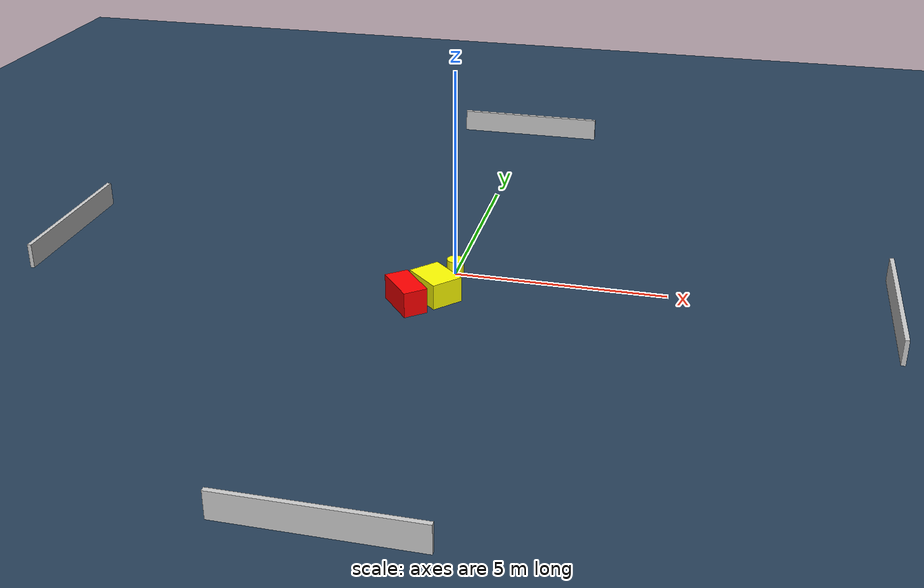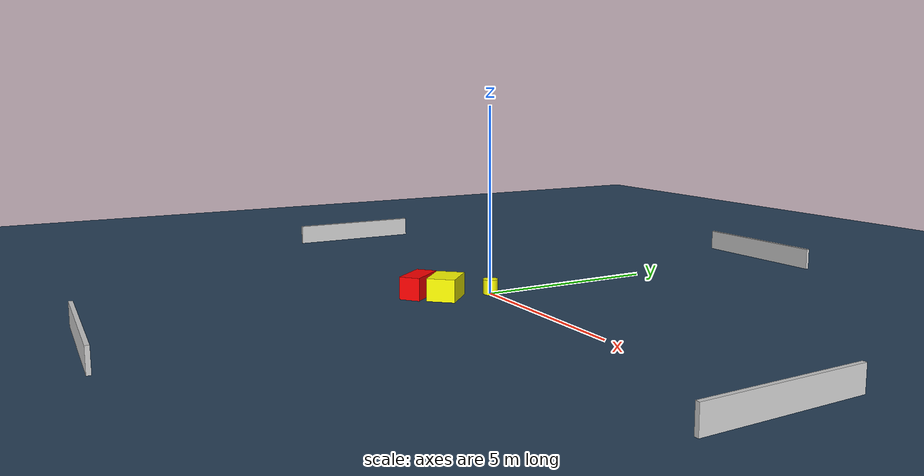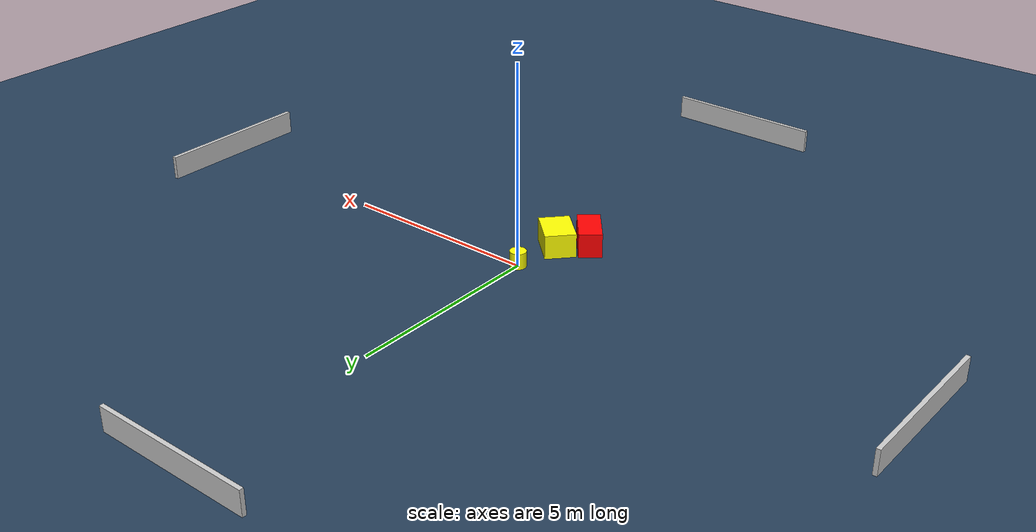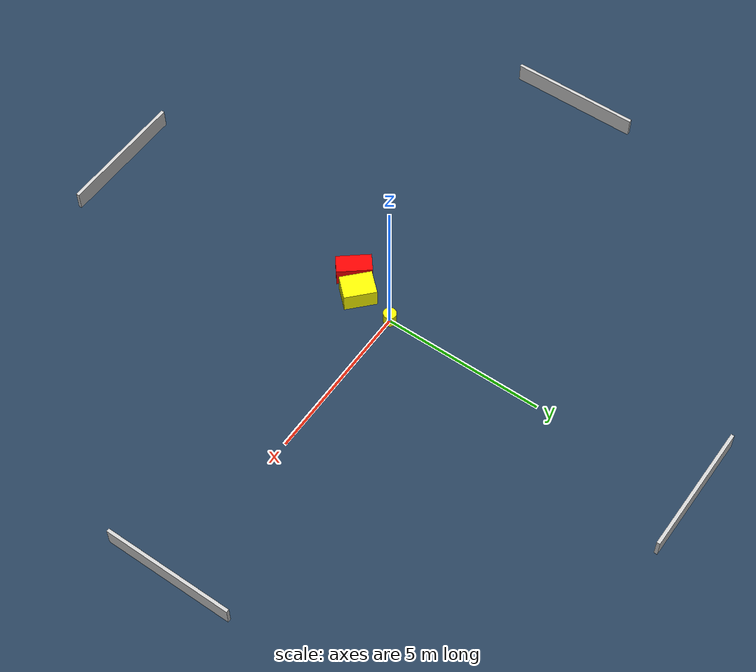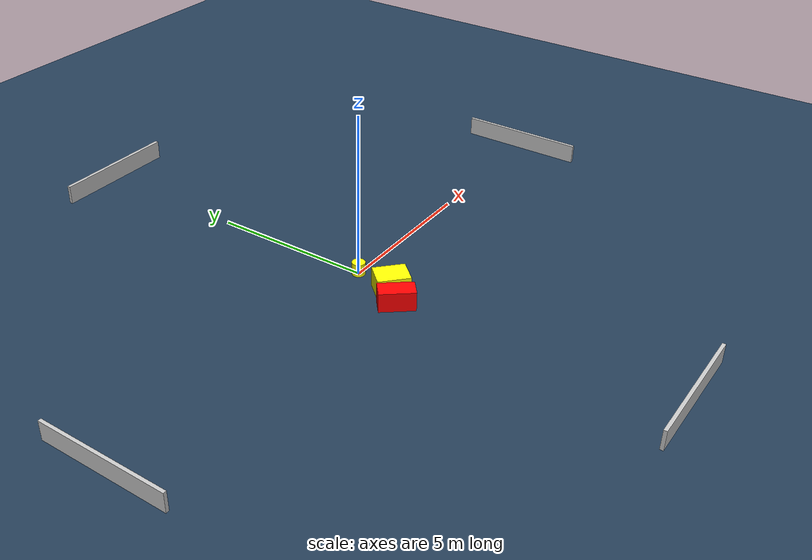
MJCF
<?xml version="1.0" ?>
<mujoco model="generated_environment">
  <option timestep="0.01" integrator="RK4" cone="elliptic"/>
  <default>
    <geom density="1"/>
  </default>
  <asset>
    <texture builtin="gradient" height="3072" name="skybox" rgb1="0.3 0.5 0.7" rgb2="0 0 0" type="skybox" width="512"/>
    <texture builtin="checker" height="300" name="groundplane" rgb1="0.2 0.3 0.4" rgb2="0.1 0.2 0.3" type="2d" width="300"/>
    <material name="groundplane" reflectance="0.2" texrepeat="5 5" texture="groundplane"/>
  </asset>
  <worldbody>
    <light dir="0 0 -1" directional="true" pos="0 0 1.5"/>
    <geom condim="3" friction="0.5 0.005 0.001" material="groundplane" name="floor" pos="0 0 0" size="0 0 0.05" type="plane"/>
    <body name="walls">
      <geom name="wall_1" condim="4" pos="-10.0 0.0 0.3" rgba="0.800000011920929 0.800000011920929 0.800000011920929 1.0" size="0.05 2.0 0.3" type="box"/>
      <geom name="wall_2" condim="4" pos="10.0 0.0 0.3" rgba="0.800000011920929 0.800000011920929 0.800000011920929 1.0" size="0.05 2.0 0.3" type="box"/>
      <geom name="wall_3" condim="4" pos="0.0 -10.0 0.3" rgba="0.800000011920929 0.800000011920929 0.800000011920929 1.0" size="2.0 0.05 0.3" type="box"/>
      <geom name="wall_4" condim="4" pos="0.0 10.0 0.3" rgba="0.800000011920929 0.800000011920929 0.800000011920929 1.0" size="2.0 0.05 0.3" type="box"/>
    </body>
    <body name="robot">
      <joint name="joint_x" type="slide" pos="0 0 0" axis="1 0 0"/>
      <joint name="joint_y" type="slide" pos="0 0 0" axis="0 1 0"/>
      <geom name="robot" type="cylinder" pos="0.0 0.0 0.2" size="0.2 0.2 0.0" mass="5.0" friction="1.0 0.005 0.0001" condim="4" rgba="1.0 1.0 0.0 1.0"/>
    </body>
    <body name="obstacle_1_movable">
      <geom name="obstacle_1_movable" condim="4" pos="-0.1727914256354546 -1.250332533856139 0.3" euler="0 0 137.3178770751938" friction="0.0 0.005 0.001" rgba="1.0 1.0 0.0 1.0" size="0.4913469522358782 0.3792514571370365 0.3" type="box" mass="0.1"/>
      <joint type="free"/>
    </body>
    <body name="obstacle_2_static">
      <geom name="obstacle_2_static" condim="4" pos="-0.7241511378673512 -1.789899939280489 0.3" euler="0 0 129.29921784013828" friction="0.0 0.005 0.001" rgba="1.0 0.0 0.0 1.0" size="0.5332290336147192 0.282610308346897 0.3" type="box"/>
    </body>
  </worldbody>
  <actuator>
    <motor name="actuator_x" joint="joint_x" gear="1" ctrlrange="-1 1"/>
    <motor name="actuator_y" joint="joint_y" gear="1" ctrlrange="-1 1"/>
  </actuator>
</mujoco>
